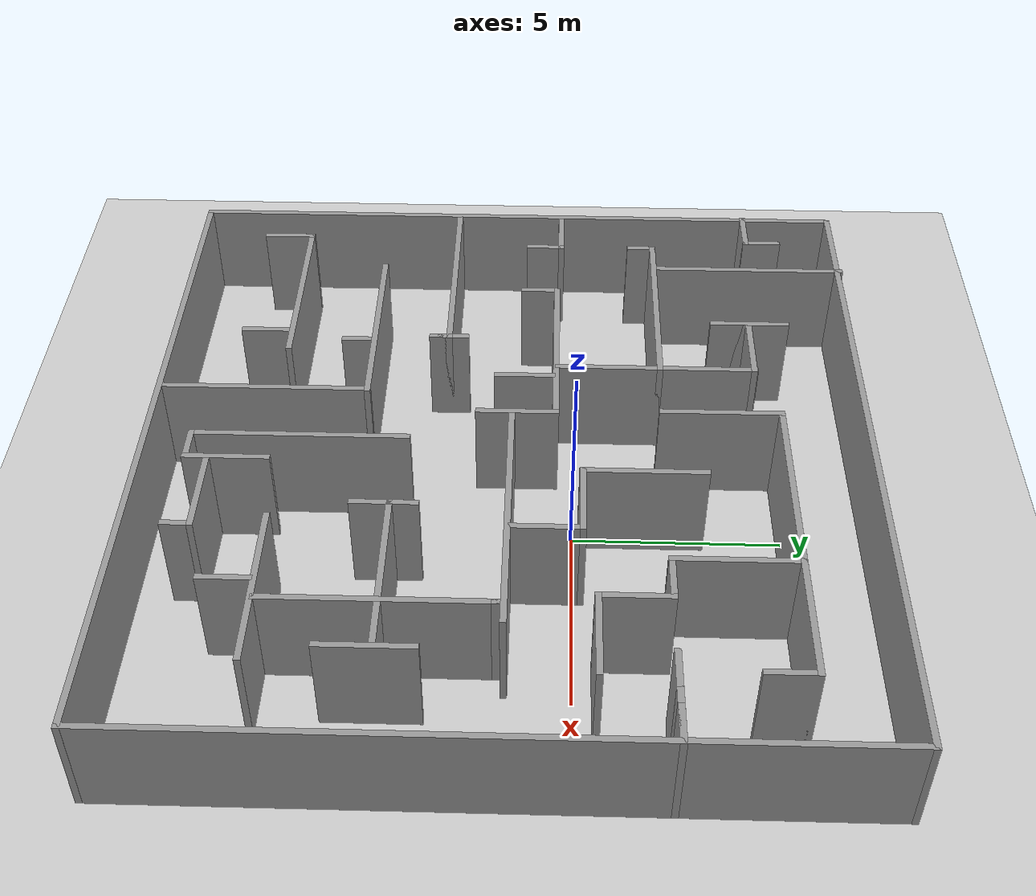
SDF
<sdf version="1.7">
 <world name="default">
  <light name="sun" type="directional">
   <pose>0 0 10 0 -0 0</pose>
   <diffuse>0.8 0.8 0.8 1</diffuse>
   <specular>0.2 0.2 0.2 1</specular>
   <attenuation>
    <range>1000</range>
    <constant>0.9</constant>
    <linear>0.01</linear>
    <quadratic>0.001</quadratic>
   </attenuation>
   <direction>-0.5 0.1 -0.9</direction>
   <spot><inner_angle>0</inner_angle><outer_angle>0</outer_angle><falloff>0</falloff></spot>
  </light>
  <model name="ground_plane">
   <static>1</static>
   <link name="link">
    <collision name="collision">
     <geometry><plane><normal>0 0 1</normal><size>100 100</size></plane></geometry>
     <surface>
      <contact><collide_bitmask>65535</collide_bitmask></contact>
      <friction><ode><mu>100</mu><mu2>50</mu2></ode></friction>
     </surface>
    </collision>
    <visual name="visual">
     <cast_shadows>0</cast_shadows>
     <geometry><plane><normal>0 0 1</normal><size>100 100</size></plane></geometry>
     <material>
      <script><uri>file://media/materials/scripts/gazebo.material</uri><name>Gazebo/Grey</name></script>
     </material>
    </visual>
   </link>
  </model>
  <gravity>0 0 -9.8</gravity>
  <magnetic_field>6e-06 2.3e-05 -4.2e-05</magnetic_field>
  <atmosphere type="adiabatic"/>
  <physics type="ode">
   <max_step_size>0.001</max_step_size>
   <real_time_factor>1</real_time_factor>
   <real_time_update_rate>1000</real_time_update_rate>
  </physics>
  <scene><ambient>0.4 0.4 0.4 1</ambient><background>0.7 0.7 0.7 1</background><shadows>1</shadows></scene>
  <spherical_coordinates>
   <surface_model>EARTH_WGS84</surface_model>
   <latitude_deg>0</latitude_deg>
   <longitude_deg>0</longitude_deg>
   <elevation>0</elevation>
   <heading_deg>0</heading_deg>
  </spherical_coordinates>
  <model name="compare1_202505">
   <pose>-1.18281 -1.52754 0 0 -0 0</pose>
   <link name="Wall_103">
    <collision name="Wall_103_Collision">
     <geometry><box><size>1.25 0.15 2.5</size></box></geometry>
     <pose>0 0 1.25 0 -0 0</pose>
    </collision>
    <visual name="Wall_103_Visual">
     <pose>0 0 1.25 0 -0 0</pose>
     <geometry><box><size>1.25 0.15 2.5</size></box></geometry>
     <material>
      <script><uri>file://media/materials/scripts/gazebo.material</uri><name>Gazebo/Grey</name></script>
      <ambient>1 1 1 1</ambient>
     </material>
     <meta><layer>0</layer></meta>
    </visual>
    <pose>-8.3823 6.19384 0 0 -0 0</pose>
   </link>
   <link name="Wall_104">
    <collision name="Wall_104_Collision">
     <geometry><box><size>1 0.15 2.5</size></box></geometry>
     <pose>0 0 1.25 0 -0 0</pose>
    </collision>
    <visual name="Wall_104_Visual">
     <pose>0 0 1.25 0 -0 0</pose>
     <geometry><box><size>1 0.15 2.5</size></box></geometry>
     <material>
      <script><uri>file://media/materials/scripts/gazebo.material</uri><name>Gazebo/Grey</name></script>
      <ambient>1 1 1 1</ambient>
     </material>
     <meta><layer>0</layer></meta>
    </visual>
    <pose>-7.8323 6.61884 0 0 -0 1.5708</pose>
   </link>
   <link name="Wall_110">
    <collision name="Wall_110_Collision">
     <geometry><box><size>0.96087 0.15 2.5</size></box></geometry>
     <pose>0 0 1.25 0 -0 0</pose>
    </collision>
    <visual name="Wall_110_Visual">
     <pose>0 0 1.25 0 -0 0</pose>
     <geometry><box><size>0.96087 0.15 2.5</size></box></geometry>
     <material>
      <script><uri>file://media/materials/scripts/gazebo.material</uri><name>Gazebo/Grey</name></script>
      <ambient>1 1 1 1</ambient>
     </material>
     <meta><layer>0</layer></meta>
    </visual>
    <pose>0.702186 -7.4959 0 0 -0 0</pose>
   </link>
   <link name="Wall_112">
    <collision name="Wall_112_Collision">
     <geometry><box><size>5.25 0.15 2.5</size></box></geometry>
     <pose>0 0 1.25 0 -0 0</pose>
    </collision>
    <visual name="Wall_112_Visual">
     <pose>0 0 1.25 0 -0 0</pose>
     <geometry><box><size>5.25 0.15 2.5</size></box></geometry>
     <material>
      <script><uri>file://media/materials/scripts/gazebo.material</uri><name>Gazebo/Grey</name></script>
      <ambient>1 1 1 1</ambient>
     </material>
     <meta><layer>0</layer></meta>
    </visual>
    <pose>0.296751 -4.9459 0 0 -0 1.5708</pose>
   </link>
   <link name="Wall_114">
    <collision name="Wall_114_Collision">
     <geometry><box><size>2.06522 0.15 2.5</size></box></geometry>
     <pose>0 0 1.25 0 -0 0</pose>
    </collision>
    <visual name="Wall_114_Visual">
     <pose>0 0 1.25 0 -0 0</pose>
     <geometry><box><size>2.06522 0.15 2.5</size></box></geometry>
     <material>
      <script><uri>file://media/materials/scripts/gazebo.material</uri><name>Gazebo/Grey</name></script>
      <ambient>1 1 1 1</ambient>
     </material>
     <meta><layer>0</layer></meta>
    </visual>
    <pose>1.10762 -6.55133 0 0 -0 1.5708</pose>
   </link>
   <link name="Wall_116">
    <collision name="Wall_116_Collision">
     <geometry><box><size>2.25 0.15 2.5</size></box></geometry>
     <pose>0 0 1.25 0 -0 0</pose>
    </collision>
    <visual name="Wall_116_Visual">
     <pose>0 0 1.25 0 -0 0</pose>
     <geometry><box><size>2.25 0.15 2.5</size></box></geometry>
     <material>
      <script><uri>file://media/materials/scripts/gazebo.material</uri><name>Gazebo/Grey</name></script>
      <ambient>1 1 1 1</ambient>
     </material>
     <meta><layer>0</layer></meta>
    </visual>
    <pose>2.25751 -6.98912 0 0 -0 0</pose>
   </link>
   <link name="Wall_117">
    <collision name="Wall_117_Collision">
     <geometry><box><size>0.75 0.15 2.5</size></box></geometry>
     <pose>0 0 1.25 0 -0 0</pose>
    </collision>
    <visual name="Wall_117_Visual">
     <pose>0 0 1.25 0 -0 0</pose>
     <geometry><box><size>0.75 0.15 2.5</size></box></geometry>
     <material>
      <script><uri>file://media/materials/scripts/gazebo.material</uri><name>Gazebo/Grey</name></script>
      <ambient>1 1 1 1</ambient>
     </material>
     <meta><layer>0</layer></meta>
    </visual>
    <pose>3.3075 -7.30216 0 0 -0 -1.5708</pose>
   </link>
   <link name="Wall_121">
    <collision name="Wall_121_Collision">
     <geometry><box><size>1.25 0.15 2.5</size></box></geometry>
     <pose>0 0 1.25 0 -0 0</pose>
    </collision>
    <visual name="Wall_121_Visual">
     <pose>0 0 1.25 0 -0 0</pose>
     <geometry><box><size>1.25 0.15 2.5</size></box></geometry>
     <material>
      <script><uri>file://media/materials/scripts/gazebo.material</uri><name>Gazebo/Grey</name></script>
      <ambient>1 1 1 1</ambient>
     </material>
     <meta><layer>0</layer></meta>
    </visual>
    <pose>4.9075 -5.9826 0 0 -0 1.5708</pose>
   </link>
   <link name="Wall_124">
    <collision name="Wall_124_Collision">
     <geometry><box><size>4.25 0.15 2.5</size></box></geometry>
     <pose>0 0 1.25 0 -0 0</pose>
    </collision>
    <visual name="Wall_124_Visual">
     <pose>0 0 1.25 0 -0 0</pose>
     <geometry><box><size>4.25 0.15 2.5</size></box></geometry>
     <material>
      <script><uri>file://media/materials/scripts/gazebo.material</uri><name>Gazebo/Grey</name></script>
      <ambient>1 1 1 1</ambient>
     </material>
     <meta><layer>0</layer></meta>
    </visual>
    <pose>5.06101 -5.33045 0 0 -0 0</pose>
   </link>
   <link name="Wall_128">
    <collision name="Wall_128_Collision">
     <geometry><box><size>5.25 0.15 2.5</size></box></geometry>
     <pose>0 0 1.25 0 -0 0</pose>
    </collision>
    <visual name="Wall_128_Visual">
     <pose>0 0 1.25 0 -0 0</pose>
     <geometry><box><size>5.25 0.15 2.5</size></box></geometry>
     <material>
      <script><uri>file://media/materials/scripts/gazebo.material</uri><name>Gazebo/Grey</name></script>
      <ambient>1 1 1 1</ambient>
     </material>
     <meta><layer>0</layer></meta>
    </visual>
    <pose>5.44101 -2.70545 0 0 -0 1.5708</pose>
   </link>
   <link name="Wall_132">
    <collision name="Wall_132_Collision">
     <geometry><box><size>4.25 0.15 2.5</size></box></geometry>
     <pose>0 0 1.25 0 -0 0</pose>
    </collision>
    <visual name="Wall_132_Visual">
     <pose>0 0 1.25 0 -0 0</pose>
     <geometry><box><size>4.25 0.15 2.5</size></box></geometry>
     <material>
      <script><uri>file://media/materials/scripts/gazebo.material</uri><name>Gazebo/Grey</name></script>
      <ambient>1 1 1 1</ambient>
     </material>
     <meta><layer>0</layer></meta>
    </visual>
    <pose>4.56601 -2.63045 0 0 -0 3.14159</pose>
   </link>
   <link name="Wall_133">
    <collision name="Wall_133_Collision">
     <geometry><box><size>1 0.15 2.5</size></box></geometry>
     <pose>0 0 1.25 0 -0 0</pose>
    </collision>
    <visual name="Wall_133_Visual">
     <pose>0 0 1.25 0 -0 0</pose>
     <geometry><box><size>1 0.15 2.5</size></box></geometry>
     <material>
      <script><uri>file://media/materials/scripts/gazebo.material</uri><name>Gazebo/Grey</name></script>
      <ambient>1 1 1 1</ambient>
     </material>
     <meta><layer>0</layer></meta>
    </visual>
    <pose>2.51601 -3.05545 0 0 -0 -1.5708</pose>
   </link>
   <link name="Wall_135">
    <collision name="Wall_135_Collision">
     <geometry><box><size>0.75 0.15 2.5</size></box></geometry>
     <pose>0 0 1.25 0 -0 0</pose>
    </collision>
    <visual name="Wall_135_Visual">
     <pose>0 0 1.25 0 -0 0</pose>
     <geometry><box><size>0.75 0.15 2.5</size></box></geometry>
     <material>
      <script><uri>file://media/materials/scripts/gazebo.material</uri><name>Gazebo/Grey</name></script>
      <ambient>1 1 1 1</ambient>
     </material>
     <meta><layer>0</layer></meta>
    </visual>
    <pose>2.51601 -2.33045 0 0 -0 1.5708</pose>
   </link>
   <link name="Wall_144">
    <collision name="Wall_144_Collision">
     <geometry><box><size>6.75 0.15 2.5</size></box></geometry>
     <pose>0 0 1.25 0 -0 0</pose>
    </collision>
    <visual name="Wall_144_Visual">
     <pose>0 0 1.25 0 -0 0</pose>
     <geometry><box><size>6.75 0.15 2.5</size></box></geometry>
     <material>
      <script><uri>file://media/materials/scripts/gazebo.material</uri><name>Gazebo/Grey</name></script>
      <ambient>1 1 1 1</ambient>
     </material>
     <meta><layer>0</layer></meta>
    </visual>
    <pose>2.65101 0.039547 0 0 -0 0</pose>
   </link>
   <link name="Wall_148">
    <collision name="Wall_148_Collision">
     <geometry><box><size>2.25 0.15 2.5</size></box></geometry>
     <pose>0 0 1.25 0 -0 0</pose>
    </collision>
    <visual name="Wall_148_Visual">
     <pose>0 0 1.25 0 -0 0</pose>
     <geometry><box><size>2.25 0.15 2.5</size></box></geometry>
     <material>
      <script><uri>file://media/materials/scripts/gazebo.material</uri><name>Gazebo/Grey</name></script>
      <ambient>1 1 1 1</ambient>
     </material>
     <meta><layer>0</layer></meta>
    </visual>
    <pose>6.71601 -2.78045 0 0 -0 1.5708</pose>
   </link>
   <link name="Wall_150">
    <collision name="Wall_150_Collision">
     <geometry><box><size>0.25 0.15 2.5</size></box></geometry>
     <pose>0 0 1.25 0 -0 0</pose>
    </collision>
    <visual name="Wall_150_Visual">
     <pose>0 0 1.25 0 -0 0</pose>
     <geometry><box><size>0.25 0.15 2.5</size></box></geometry>
     <material>
      <script><uri>file://media/materials/scripts/gazebo.material</uri><name>Gazebo/Grey</name></script>
      <ambient>1 1 1 1</ambient>
     </material>
     <meta><layer>0</layer></meta>
    </visual>
    <pose>5.44101 -0.105453 0 0 -0 1.5708</pose>
   </link>
   <link name="Wall_163">
    <collision name="Wall_163_Collision">
     <geometry><box><size>1.75 0.15 2.5</size></box></geometry>
     <pose>0 0 1.25 0 -0 0</pose>
    </collision>
    <visual name="Wall_163_Visual">
     <pose>0 0 1.25 0 -0 0</pose>
     <geometry><box><size>1.75 0.15 2.5</size></box></geometry>
     <material>
      <script><uri>file://media/materials/scripts/gazebo.material</uri><name>Gazebo/Grey</name></script>
      <ambient>1 1 1 1</ambient>
     </material>
     <meta><layer>0</layer></meta>
    </visual>
    <pose>3.17879 0.928349 0 0 -0 1.5708</pose>
   </link>
   <link name="Wall_164">
    <collision name="Wall_164_Collision">
     <geometry><box><size>2 0.15 2.5</size></box></geometry>
     <pose>0 0 1.25 0 -0 0</pose>
    </collision>
    <visual name="Wall_164_Visual">
     <pose>0 0 1.25 0 -0 0</pose>
     <geometry><box><size>2 0.15 2.5</size></box></geometry>
     <material>
      <script><uri>file://media/materials/scripts/gazebo.material</uri><name>Gazebo/Grey</name></script>
      <ambient>1 1 1 1</ambient>
     </material>
     <meta><layer>0</layer></meta>
    </visual>
    <pose>2.25379 1.72835 0 0 -0 3.14159</pose>
   </link>
   <link name="Wall_165">
    <collision name="Wall_165_Collision">
     <geometry><box><size>3 0.15 2.5</size></box></geometry>
     <pose>0 0 1.25 0 -0 0</pose>
    </collision>
    <visual name="Wall_165_Visual">
     <pose>0 0 1.25 0 -0 0</pose>
     <geometry><box><size>3 0.15 2.5</size></box></geometry>
     <material>
      <script><uri>file://media/materials/scripts/gazebo.material</uri><name>Gazebo/Grey</name></script>
      <ambient>1 1 1 1</ambient>
     </material>
     <meta><layer>0</layer></meta>
    </visual>
    <pose>1.32879 3.15335 0 0 -0 1.5708</pose>
   </link>
   <link name="Wall_170">
    <collision name="Wall_170_Collision">
     <geometry><box><size>1.75 0.15 2.5</size></box></geometry>
     <pose>0 0 1.25 0 -0 0</pose>
    </collision>
    <visual name="Wall_170_Visual">
     <pose>0 0 1.25 0 -0 0</pose>
     <geometry><box><size>1.75 0.15 2.5</size></box></geometry>
     <material>
      <script><uri>file://media/materials/scripts/gazebo.material</uri><name>Gazebo/Grey</name></script>
      <ambient>1 1 1 1</ambient>
     </material>
     <meta><layer>0</layer></meta>
    </visual>
    <pose>5.175 2.83308 0 0 -0 -1.5708</pose>
   </link>
   <link name="Wall_172">
    <collision name="Wall_172_Collision">
     <geometry><box><size>2.25 0.15 2.5</size></box></geometry>
     <pose>0 0 1.25 0 -0 0</pose>
    </collision>
    <visual name="Wall_172_Visual">
     <pose>0 0 1.25 0 -0 0</pose>
     <geometry><box><size>2.25 0.15 2.5</size></box></geometry>
     <material>
      <script><uri>file://media/materials/scripts/gazebo.material</uri><name>Gazebo/Grey</name></script>
      <ambient>1 1 1 1</ambient>
     </material>
     <meta><layer>0</layer></meta>
    </visual>
    <pose>6.22501 2.03308 0 0 -0 0</pose>
   </link>
   <link name="Wall_174">
    <collision name="Wall_174_Collision">
     <geometry><box><size>3 0.15 2.5</size></box></geometry>
     <pose>0 0 1.25 0 -0 0</pose>
    </collision>
    <visual name="Wall_174_Visual">
     <pose>0 0 1.25 0 -0 0</pose>
     <geometry><box><size>3 0.15 2.5</size></box></geometry>
     <material>
      <script><uri>file://media/materials/scripts/gazebo.material</uri><name>Gazebo/Grey</name></script>
      <ambient>1 1 1 1</ambient>
     </material>
     <meta><layer>0</layer></meta>
    </visual>
    <pose>4.07101 5.06455 0 0 -0 1.5708</pose>
   </link>
   <link name="Wall_175">
    <collision name="Wall_175_Collision">
     <geometry><box><size>3.25 0.15 2.5</size></box></geometry>
     <pose>0 0 1.25 0 -0 0</pose>
    </collision>
    <visual name="Wall_175_Visual">
     <pose>0 0 1.25 0 -0 0</pose>
     <geometry><box><size>3.25 0.15 2.5</size></box></geometry>
     <material>
      <script><uri>file://media/materials/scripts/gazebo.material</uri><name>Gazebo/Grey</name></script>
      <ambient>1 1 1 1</ambient>
     </material>
     <meta><layer>0</layer></meta>
    </visual>
    <pose>5.62101 6.48955 0 0 -0 0</pose>
   </link>
   <link name="Wall_176">
    <collision name="Wall_176_Collision">
     <geometry><box><size>1.25 0.15 2.5</size></box></geometry>
     <pose>0 0 1.25 0 -0 0</pose>
    </collision>
    <visual name="Wall_176_Visual">
     <pose>0 0 1.25 0 -0 0</pose>
     <geometry><box><size>1.25 0.15 2.5</size></box></geometry>
     <material>
      <script><uri>file://media/materials/scripts/gazebo.material</uri><name>Gazebo/Grey</name></script>
      <ambient>1 1 1 1</ambient>
     </material>
     <meta><layer>0</layer></meta>
    </visual>
    <pose>7.17101 5.93955 0 0 -0 -1.5708</pose>
   </link>
   <link name="Wall_178">
    <collision name="Wall_178_Collision">
     <geometry><box><size>5 0.15 2.5</size></box></geometry>
     <pose>0 0 1.25 0 -0 0</pose>
    </collision>
    <visual name="Wall_178_Visual">
     <pose>0 0 1.25 0 -0 0</pose>
     <geometry><box><size>5 0.15 2.5</size></box></geometry>
     <material>
      <script><uri>file://media/materials/scripts/gazebo.material</uri><name>Gazebo/Grey</name></script>
      <ambient>1 1 1 1</ambient>
     </material>
     <meta><layer>0</layer></meta>
    </visual>
    <pose>1.64601 6.48955 0 0 -0 3.14159</pose>
   </link>
   <link name="Wall_179">
    <collision name="Wall_179_Collision">
     <geometry><box><size>3 0.15 2.5</size></box></geometry>
     <pose>0 0 1.25 0 -0 0</pose>
    </collision>
    <visual name="Wall_179_Visual">
     <pose>0 0 1.25 0 -0 0</pose>
     <geometry><box><size>3 0.15 2.5</size></box></geometry>
     <material>
      <script><uri>file://media/materials/scripts/gazebo.material</uri><name>Gazebo/Grey</name></script>
      <ambient>1 1 1 1</ambient>
     </material>
     <meta><layer>0</layer></meta>
    </visual>
    <pose>-0.778986 5.06455 0 0 -0 -1.5708</pose>
   </link>
   <link name="Wall_36">
    <collision name="Wall_36_Collision">
     <geometry><box><size>17.25 0.15 2.5</size></box></geometry>
     <pose>0 0 1.25 0 -0 0</pose>
    </collision>
    <visual name="Wall_36_Visual">
     <pose>0 0 1.25 0 -0 0</pose>
     <geometry><box><size>17.25 0.15 2.5</size></box></geometry>
     <material>
      <script><uri>file://media/materials/scripts/gazebo.material</uri><name>Gazebo/Grey</name></script>
      <ambient>1 1 1 1</ambient>
     </material>
     <meta><layer>0</layer></meta>
    </visual>
    <pose>-8.91866 -0.032423 0 0 -0 1.5708</pose>
   </link>
   <link name="Wall_37">
    <collision name="Wall_37_Collision">
     <geometry><box><size>18.001 0.15 2.5</size></box></geometry>
     <pose>0 0 1.25 0 -0 0</pose>
    </collision>
    <visual name="Wall_37_Visual">
     <pose>0 0 1.25 0 -0 0</pose>
     <geometry><box><size>18.001 0.15 2.5</size></box></geometry>
     <material>
      <script><uri>file://media/materials/scripts/gazebo.material</uri><name>Gazebo/Grey</name></script>
      <ambient>1 1 1 1</ambient>
     </material>
     <meta><layer>0</layer></meta>
    </visual>
    <pose>0.006771 8.51471 0 0 -0 -0.000321</pose>
   </link>
   <link name="Wall_38">
    <collision name="Wall_38_Collision">
     <geometry><box><size>17.25 0.15 2.5</size></box></geometry>
     <pose>0 0 1.25 0 -0 0</pose>
    </collision>
    <visual name="Wall_38_Visual">
     <pose>0 0 1.25 0 -0 0</pose>
     <geometry><box><size>17.25 0.15 2.5</size></box></geometry>
     <material>
      <script><uri>file://media/materials/scripts/gazebo.material</uri><name>Gazebo/Grey</name></script>
      <ambient>1 1 1 1</ambient>
     </material>
     <meta><layer>0</layer></meta>
    </visual>
    <pose>8.9322 -0.038149 0 0 -0 -1.5708</pose>
   </link>
   <link name="Wall_39">
    <collision name="Wall_39_Collision">
     <geometry><box><size>18.001 0.15 2.5</size></box></geometry>
     <pose>0 0 1.25 0 -0 0</pose>
    </collision>
    <visual name="Wall_39_Visual">
     <pose>0 0 1.25 0 -0 0</pose>
     <geometry><box><size>18.001 0.15 2.5</size></box></geometry>
     <material>
      <script><uri>file://media/materials/scripts/gazebo.material</uri><name>Gazebo/Grey</name></script>
      <ambient>1 1 1 1</ambient>
     </material>
     <meta><layer>0</layer></meta>
    </visual>
    <pose>0.006771 -8.58529 0 0 -0 3.14127</pose>
   </link>
   <link name="Wall_45">
    <collision name="Wall_45_Collision">
     <geometry><box><size>1.34143 0.15 2.5</size></box></geometry>
     <pose>0 0 1.25 0 -0 0</pose>
    </collision>
    <visual name="Wall_45_Visual">
     <pose>0 0 1.25 0 -0 0</pose>
     <geometry><box><size>1.34143 0.15 2.5</size></box></geometry>
     <material>
      <script><uri>file://media/materials/scripts/gazebo.material</uri><name>Gazebo/Grey</name></script>
      <ambient>1 1 1 1</ambient>
     </material>
     <meta><layer>0</layer></meta>
    </visual>
    <pose>-7.83031 -6.21575 0 0 -0 1.5708</pose>
   </link>
   <link name="Wall_47">
    <collision name="Wall_47_Collision">
     <geometry><box><size>5 0.15 2.5</size></box></geometry>
     <pose>0 0 1.25 0 -0 0</pose>
    </collision>
    <visual name="Wall_47_Visual">
     <pose>0 0 1.25 0 -0 0</pose>
     <geometry><box><size>5 0.15 2.5</size></box></geometry>
     <material>
      <script><uri>file://media/materials/scripts/gazebo.material</uri><name>Gazebo/Grey</name></script>
      <ambient>1 1 1 1</ambient>
     </material>
     <meta><layer>0</layer></meta>
    </visual>
    <pose>-5.40531 -5.62014 0 0 -0 0</pose>
   </link>
   <link name="Wall_51">
    <collision name="Wall_51_Collision">
     <geometry><box><size>1.25 0.15 2.5</size></box></geometry>
     <pose>0 0 1.25 0 -0 0</pose>
    </collision>
    <visual name="Wall_51_Visual">
     <pose>0 0 1.25 0 -0 0</pose>
     <geometry><box><size>1.25 0.15 2.5</size></box></geometry>
     <material>
      <script><uri>file://media/materials/scripts/gazebo.material</uri><name>Gazebo/Grey</name></script>
      <ambient>1 1 1 1</ambient>
     </material>
     <meta><layer>0</layer></meta>
    </visual>
    <pose>-3.66631 -6.27988 0 0 -0 -1.5708</pose>
   </link>
   <link name="Wall_55">
    <collision name="Wall_55_Collision">
     <geometry><box><size>5.17014 0.15 2.5</size></box></geometry>
     <pose>0 0 1.25 0 -0 0</pose>
    </collision>
    <visual name="Wall_55_Visual">
     <pose>0 0 1.25 0 -0 0</pose>
     <geometry><box><size>5.17014 0.15 2.5</size></box></geometry>
     <material>
      <script><uri>file://media/materials/scripts/gazebo.material</uri><name>Gazebo/Grey</name></script>
      <ambient>1 1 1 1</ambient>
     </material>
     <meta><layer>0</layer></meta>
    </visual>
    <pose>-1.40621 -6.00902 0 0 -0 1.5708</pose>
   </link>
   <link name="Wall_57">
    <collision name="Wall_57_Collision">
     <geometry><box><size>5.23866 0.15 2.5</size></box></geometry>
     <pose>0 0 1.25 0 -0 0</pose>
    </collision>
    <visual name="Wall_57_Visual">
     <pose>0 0 1.25 0 -0 0</pose>
     <geometry><box><size>5.23866 0.15 2.5</size></box></geometry>
     <material>
      <script><uri>file://media/materials/scripts/gazebo.material</uri><name>Gazebo/Grey</name></script>
      <ambient>1 1 1 1</ambient>
     </material>
     <meta><layer>0</layer></meta>
    </visual>
    <pose>-3.9392 -3.49895 0 0 -0 3.14159</pose>
   </link>
   <link name="Wall_59">
    <collision name="Wall_59_Collision">
     <geometry><box><size>0.75 0.15 2.5</size></box></geometry>
     <pose>0 0 1.25 0 -0 0</pose>
    </collision>
    <visual name="Wall_59_Visual">
     <pose>0 0 1.25 0 -0 0</pose>
     <geometry><box><size>0.75 0.15 2.5</size></box></geometry>
     <material>
      <script><uri>file://media/materials/scripts/gazebo.material</uri><name>Gazebo/Grey</name></script>
      <ambient>1 1 1 1</ambient>
     </material>
     <meta><layer>0</layer></meta>
    </visual>
    <pose>-3.3512 -3.94859 0 0 -0 -1.5708</pose>
   </link>
   <link name="Wall_63">
    <collision name="Wall_63_Collision">
     <geometry><box><size>5.5 0.15 2.5</size></box></geometry>
     <pose>0 0 1.25 0 -0 0</pose>
    </collision>
    <visual name="Wall_63_Visual">
     <pose>0 0 1.25 0 -0 0</pose>
     <geometry><box><size>5.5 0.15 2.5</size></box></geometry>
     <material>
      <script><uri>file://media/materials/scripts/gazebo.material</uri><name>Gazebo/Grey</name></script>
      <ambient>1 1 1 1</ambient>
     </material>
     <meta><layer>0</layer></meta>
    </visual>
    <pose>-6.19983 -1.61834 0 0 -0 0</pose>
   </link>
   <link name="Wall_64">
    <collision name="Wall_64_Collision">
     <geometry><box><size>0.568053 0.15 2.5</size></box></geometry>
     <pose>0 0 1.25 0 -0 0</pose>
    </collision>
    <visual name="Wall_64_Visual">
     <pose>0 0 1.25 0 -0 0</pose>
     <geometry><box><size>0.568053 0.15 2.5</size></box></geometry>
     <material>
      <script><uri>file://media/materials/scripts/gazebo.material</uri><name>Gazebo/Grey</name></script>
      <ambient>1 1 1 1</ambient>
     </material>
     <meta><layer>0</layer></meta>
    </visual>
    <pose>-3.52483 -1.82736 0 0 -0 -1.5708</pose>
   </link>
   <link name="Wall_65">
    <collision name="Wall_65_Collision">
     <geometry><box><size>1 0.15 2.5</size></box></geometry>
     <pose>0 0 1.25 0 -0 0</pose>
    </collision>
    <visual name="Wall_65_Visual">
     <pose>0 0 1.25 0 -0 0</pose>
     <geometry><box><size>1 0.15 2.5</size></box></geometry>
     <material>
      <script><uri>file://media/materials/scripts/gazebo.material</uri><name>Gazebo/Grey</name></script>
      <ambient>1 1 1 1</ambient>
     </material>
     <meta><layer>0</layer></meta>
    </visual>
    <pose>-3.52483 -1.62273 0 0 -0 1.5708</pose>
   </link>
   <link name="Wall_71">
    <collision name="Wall_71_Collision">
     <geometry><box><size>1 0.15 2.5</size></box></geometry>
     <pose>0 0 1.25 0 -0 0</pose>
    </collision>
    <visual name="Wall_71_Visual">
     <pose>0 0 1.25 0 -0 0</pose>
     <geometry><box><size>1 0.15 2.5</size></box></geometry>
     <material>
      <script><uri>file://media/materials/scripts/gazebo.material</uri><name>Gazebo/Grey</name></script>
      <ambient>1 1 1 1</ambient>
     </material>
     <meta><layer>0</layer></meta>
    </visual>
    <pose>-7.49396 0.768467 0 0 -0 1.5708</pose>
   </link>
   <link name="Wall_72">
    <collision name="Wall_72_Collision">
     <geometry><box><size>1.5 0.15 2.5</size></box></geometry>
     <pose>0 0 1.25 0 -0 0</pose>
    </collision>
    <visual name="Wall_72_Visual">
     <pose>0 0 1.25 0 -0 0</pose>
     <geometry><box><size>1.5 0.15 2.5</size></box></geometry>
     <material>
      <script><uri>file://media/materials/scripts/gazebo.material</uri><name>Gazebo/Grey</name></script>
      <ambient>1 1 1 1</ambient>
     </material>
     <meta><layer>0</layer></meta>
    </visual>
    <pose>-8.16896 1.19347 0 0 -0 3.14159</pose>
   </link>
   <link name="Wall_77">
    <collision name="Wall_77_Collision">
     <geometry><box><size>1 0.15 2.5</size></box></geometry>
     <pose>0 0 1.25 0 -0 0</pose>
    </collision>
    <visual name="Wall_77_Visual">
     <pose>0 0 1.25 0 -0 0</pose>
     <geometry><box><size>1 0.15 2.5</size></box></geometry>
     <material>
      <script><uri>file://media/materials/scripts/gazebo.material</uri><name>Gazebo/Grey</name></script>
      <ambient>1 1 1 1</ambient>
     </material>
     <meta><layer>0</layer></meta>
    </visual>
    <pose>-5.53092 0.664119 0 0 -0 1.5708</pose>
   </link>
   <link name="Wall_78">
    <collision name="Wall_78_Collision">
     <geometry><box><size>5 0.15 2.5</size></box></geometry>
     <pose>0 0 1.25 0 -0 0</pose>
    </collision>
    <visual name="Wall_78_Visual">
     <pose>0 0 1.25 0 -0 0</pose>
     <geometry><box><size>5 0.15 2.5</size></box></geometry>
     <material>
      <script><uri>file://media/materials/scripts/gazebo.material</uri><name>Gazebo/Grey</name></script>
      <ambient>1 1 1 1</ambient>
     </material>
     <meta><layer>0</layer></meta>
    </visual>
    <pose>-3.10592 1.08912 0 0 -0 0</pose>
   </link>
   <link name="Wall_80">
    <collision name="Wall_80_Collision">
     <geometry><box><size>2 0.15 2.5</size></box></geometry>
     <pose>0 0 1.25 0 -0 0</pose>
    </collision>
    <visual name="Wall_80_Visual">
     <pose>0 0 1.25 0 -0 0</pose>
     <geometry><box><size>2 0.15 2.5</size></box></geometry>
     <material>
      <script><uri>file://media/materials/scripts/gazebo.material</uri><name>Gazebo/Grey</name></script>
      <ambient>1 1 1 1</ambient>
     </material>
     <meta><layer>0</layer></meta>
    </visual>
    <pose>-0.68092 0.164119 0 0 -0 -1.5708</pose>
   </link>
   <link name="Wall_85">
    <collision name="Wall_85_Collision">
     <geometry><box><size>1.5 0.15 2.5</size></box></geometry>
     <pose>0 0 1.25 0 -0 0</pose>
    </collision>
    <visual name="Wall_85_Visual">
     <pose>0 0 1.25 0 -0 0</pose>
     <geometry><box><size>1.5 0.15 2.5</size></box></geometry>
     <material>
      <script><uri>file://media/materials/scripts/gazebo.material</uri><name>Gazebo/Grey</name></script>
      <ambient>1 1 1 1</ambient>
     </material>
     <meta><layer>0</layer></meta>
    </visual>
    <pose>-2.03982 0.318174 0 0 -0 -1.5708</pose>
   </link>
   <link name="Wall_87">
    <collision name="Wall_87_Collision">
     <geometry><box><size>4.995 0.15 2.5</size></box></geometry>
     <pose>0 0 1.25 0 -0 0</pose>
    </collision>
    <visual name="Wall_87_Visual">
     <pose>0 0 1.25 0 -0 0</pose>
     <geometry><box><size>4.995 0.15 2.5</size></box></geometry>
     <material>
      <script><uri>file://media/materials/scripts/gazebo.material</uri><name>Gazebo/Grey</name></script>
      <ambient>1 1 1 1</ambient>
     </material>
     <meta><layer>0</layer></meta>
    </visual>
    <pose>-2.39982 3.56567 0 0 -0 1.5708</pose>
   </link>
   <link name="Wall_88">
    <collision name="Wall_88_Collision">
     <geometry><box><size>2 0.15 2.5</size></box></geometry>
     <pose>0 0 1.25 0 -0 0</pose>
    </collision>
    <visual name="Wall_88_Visual">
     <pose>0 0 1.25 0 -0 0</pose>
     <geometry><box><size>2 0.15 2.5</size></box></geometry>
     <material>
      <script><uri>file://media/materials/scripts/gazebo.material</uri><name>Gazebo/Grey</name></script>
      <ambient>1 1 1 1</ambient>
     </material>
     <meta><layer>0</layer></meta>
    </visual>
    <pose>-3.32482 5.97317 0 0 -0 3.14159</pose>
   </link>
   <link name="Wall_89">
    <collision name="Wall_89_Collision">
     <geometry><box><size>1.06012 0.15 2.5</size></box></geometry>
     <pose>0 0 1.25 0 -0 0</pose>
    </collision>
    <visual name="Wall_89_Visual">
     <pose>0 0 1.25 0 -0 0</pose>
     <geometry><box><size>1.06012 0.15 2.5</size></box></geometry>
     <material>
      <script><uri>file://media/materials/scripts/gazebo.material</uri><name>Gazebo/Grey</name></script>
      <ambient>1 1 1 1</ambient>
     </material>
     <meta><layer>0</layer></meta>
    </visual>
    <pose>-4.24982 5.53317 0 0 -0 -1.5708</pose>
   </link>
   <link name="Wall_90">
    <collision name="Wall_90_Collision">
     <geometry><box><size>2 0.15 2.5</size></box></geometry>
     <pose>0 0 1.25 0 -0 0</pose>
    </collision>
    <visual name="Wall_90_Visual">
     <pose>0 0 1.25 0 -0 0</pose>
     <geometry><box><size>2 0.15 2.5</size></box></geometry>
     <material>
      <script><uri>file://media/materials/scripts/gazebo.material</uri><name>Gazebo/Grey</name></script>
      <ambient>1 1 1 1</ambient>
     </material>
     <meta><layer>0</layer></meta>
    </visual>
    <pose>-4.24982 6.00317 0 0 -0 1.5708</pose>
   </link>
   <link name="Wall_94">
    <collision name="Wall_94_Collision">
     <geometry><box><size>5.25 0.15 2.5</size></box></geometry>
     <pose>0 0 1.25 0 -0 0</pose>
    </collision>
    <visual name="Wall_94_Visual">
     <pose>0 0 1.25 0 -0 0</pose>
     <geometry><box><size>5.25 0.15 2.5</size></box></geometry>
     <material>
      <script><uri>file://media/materials/scripts/gazebo.material</uri><name>Gazebo/Grey</name></script>
      <ambient>1 1 1 1</ambient>
     </material>
     <meta><layer>0</layer></meta>
    </visual>
    <pose>-4.94982 3.64817 0 0 -0 3.14159</pose>
   </link>
   <link name="Wall_95">
    <collision name="Wall_95_Collision">
     <geometry><box><size>0.75 0.15 2.5</size></box></geometry>
     <pose>0 0 1.25 0 -0 0</pose>
    </collision>
    <visual name="Wall_95_Visual">
     <pose>0 0 1.25 0 -0 0</pose>
     <geometry><box><size>0.75 0.15 2.5</size></box></geometry>
     <material>
      <script><uri>file://media/materials/scripts/gazebo.material</uri><name>Gazebo/Grey</name></script>
      <ambient>1 1 1 1</ambient>
     </material>
     <meta><layer>0</layer></meta>
    </visual>
    <pose>-7.49982 3.34817 0 0 -0 -1.5708</pose>
   </link>
   <link name="Wall_99">
    <collision name="Wall_99_Collision">
     <geometry><box><size>5 0.15 2.5</size></box></geometry>
     <pose>0 0 1.25 0 -0 0</pose>
    </collision>
    <visual name="Wall_99_Visual">
     <pose>0 0 1.25 0 -0 0</pose>
     <geometry><box><size>5 0.15 2.5</size></box></geometry>
     <material>
      <script><uri>file://media/materials/scripts/gazebo.material</uri><name>Gazebo/Grey</name></script>
      <ambient>1 1 1 1</ambient>
     </material>
     <meta><layer>0</layer></meta>
    </visual>
    <pose>-6.58482 6.16317 0 0 -0 1.5708</pose>
   </link>
   <static>1</static>
  </model>
  <model name="one_m_wall">
   <pose>3.44183 2.33917 0 0 -0 0</pose>
   <link name="Wall_1">
    <collision name="Wall_1_Collision">
     <geometry><box><size>1 0.15 2.5</size></box></geometry>
     <pose>0 0 1.25 0 -0 0</pose>
    </collision>
    <visual name="Wall_1_Visual">
     <pose>0 0 1.25 0 -0 0</pose>
     <geometry><box><size>1 0.15 2.5</size></box></geometry>
     <material>
      <script><uri>file://media/materials/scripts/gazebo.material</uri><name>Gazebo/Grey</name></script>
      <ambient>1 1 1 1</ambient>
     </material>
     <meta><layer>0</layer></meta>
    </visual>
    <pose>0 -0.229314 0 0 -0 0</pose>
   </link>
   <static>1</static>
  </model>
  <model name="one_m_wall_2">
   <pose>5.93131 2.33579 0 0 -0 0</pose>
   <link name="Wall_1">
    <collision name="Wall_1_Collision">
     <geometry><box><size>1 0.15 2.5</size></box></geometry>
     <pose>0 0 1.25 0 -0 0</pose>
    </collision>
    <visual name="Wall_1_Visual">
     <pose>0 0 1.25 0 -0 0</pose>
     <geometry><box><size>1 0.15 2.5</size></box></geometry>
     <material>
      <script><uri>file://media/materials/scripts/gazebo.material</uri><name>Gazebo/Grey</name></script>
      <ambient>1 1 1 1</ambient>
     </material>
     <meta><layer>0</layer></meta>
    </visual>
    <pose>0 -0.229314 0 0 -0 0</pose>
   </link>
   <static>1</static>
  </model>
  <model name="one_m_wall_0">
   <pose>6.91049 2.33681 0 0 -0 0</pose>
   <link name="Wall_1">
    <collision name="Wall_1_Collision">
     <geometry><box><size>1 0.15 2.5</size></box></geometry>
     <pose>0 0 1.25 0 -0 0</pose>
    </collision>
    <visual name="Wall_1_Visual">
     <pose>0 0 1.25 0 -0 0</pose>
     <geometry><box><size>1 0.15 2.5</size></box></geometry>
     <material>
      <script><uri>file://media/materials/scripts/gazebo.material</uri><name>Gazebo/Grey</name></script>
      <ambient>1 1 1 1</ambient>
     </material>
     <meta><layer>0</layer></meta>
    </visual>
    <pose>0 -0.229314 0 0 -0 0</pose>
   </link>
   <static>1</static>
  </model>
  <model name="one_m_wall_1">
   <pose>7.32671 2.33656 0 0 -0 0</pose>
   <link name="Wall_1">
    <collision name="Wall_1_Collision">
     <geometry><box><size>1 0.15 2.5</size></box></geometry>
     <pose>0 0 1.25 0 -0 0</pose>
    </collision>
    <visual name="Wall_1_Visual">
     <pose>0 0 1.25 0 -0 0</pose>
     <geometry><box><size>1 0.15 2.5</size></box></geometry>
     <material>
      <script><uri>file://media/materials/scripts/gazebo.material</uri><name>Gazebo/Grey</name></script>
      <ambient>1 1 1 1</ambient>
     </material>
     <meta><layer>0</layer></meta>
    </visual>
    <pose>0 -0.229314 0 0 -0 0</pose>
   </link>
   <static>1</static>
  </model>
 </world>
</sdf>
